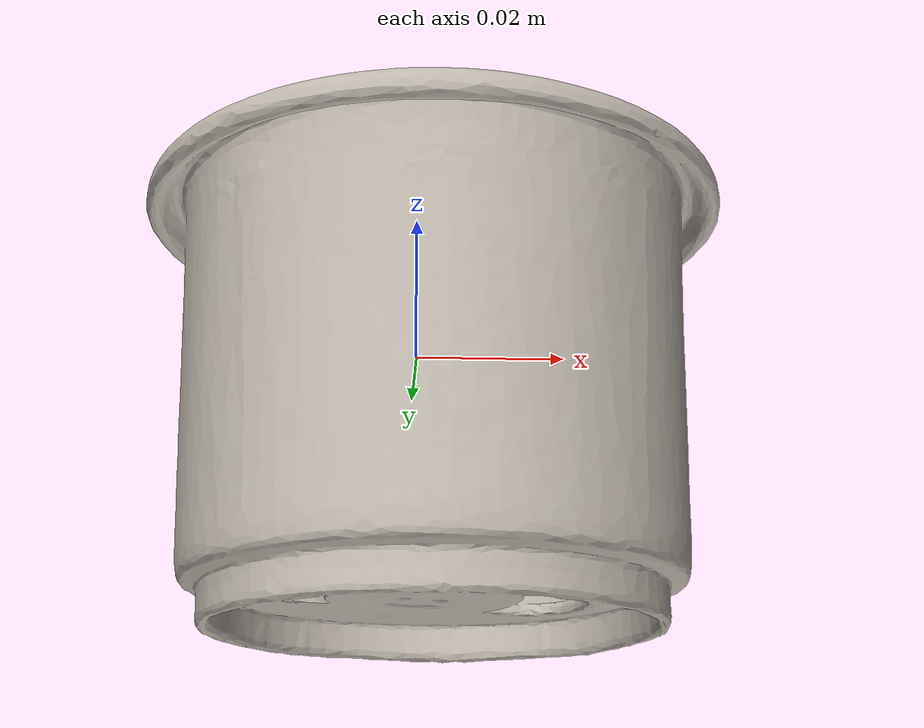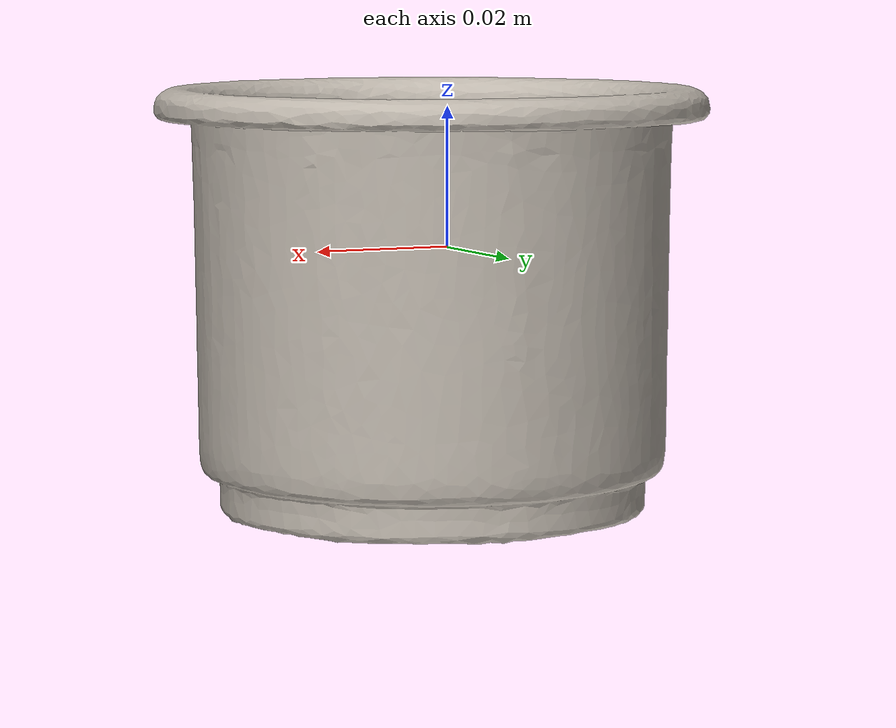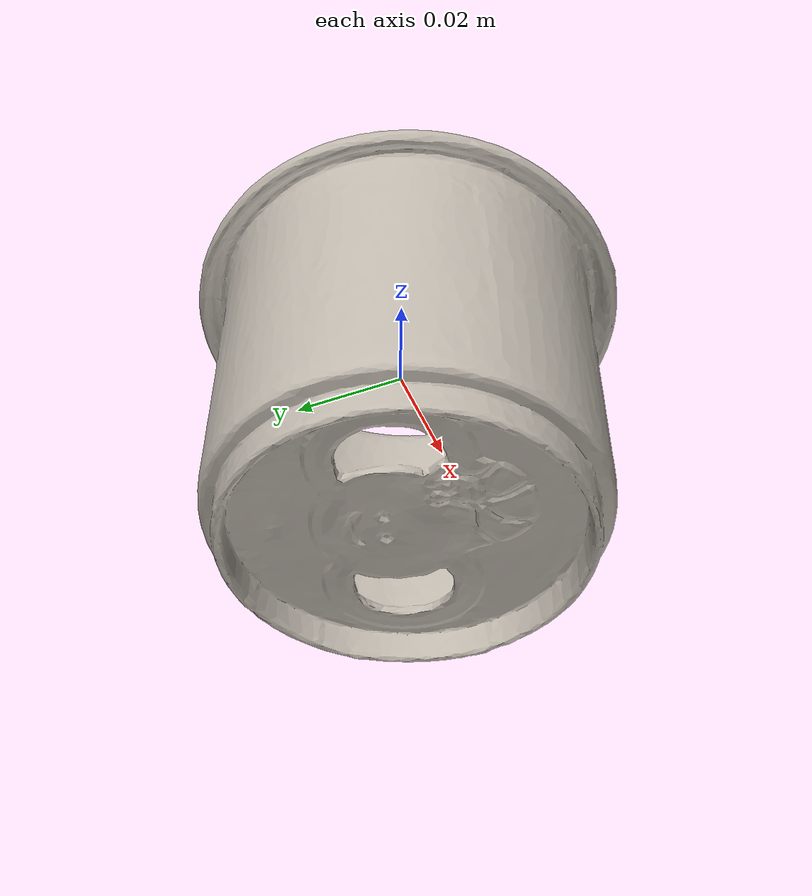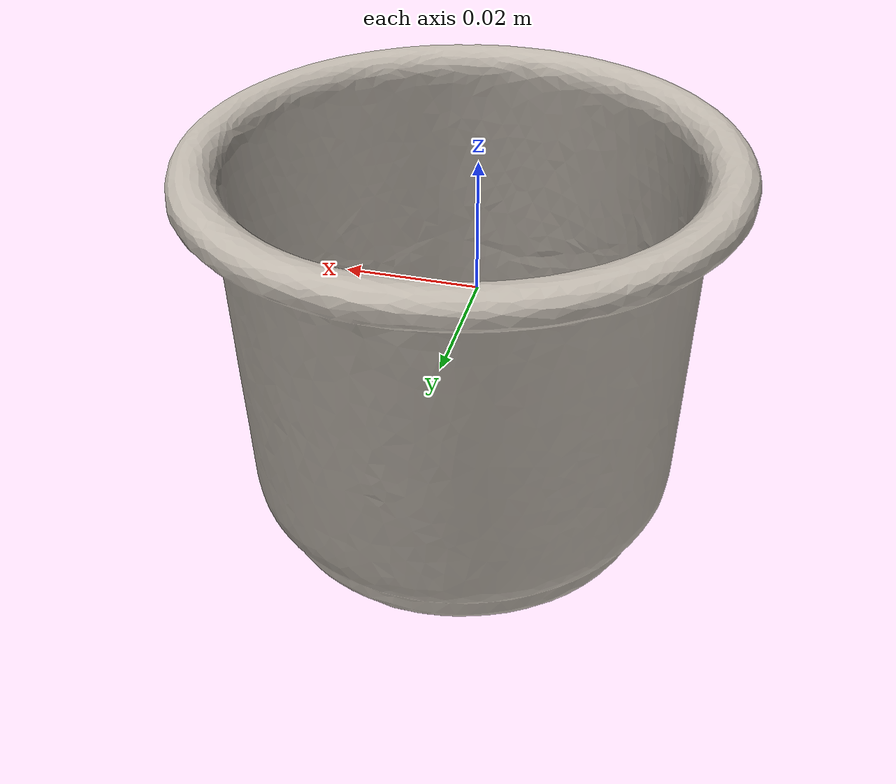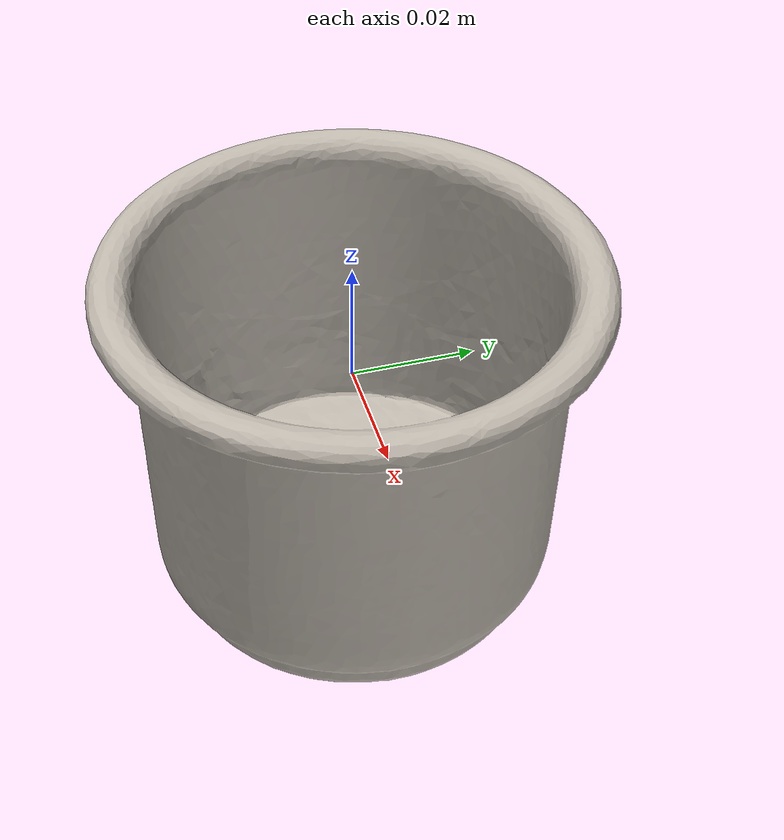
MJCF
<mujoco model="bread">
  <asset>
    <mesh file="nontextured.stl" name="obj_mesh" scale="0.8 0.8 0.8"/>
    <texture file="../../../../../textures/bread.png" type="2d" name="tex-bread" />
    <material name="bread" reflectance="0.7" texrepeat="15 15" texture="tex-bread" texuniform="true"/>
  </asset>
  <worldbody>
    <body>
      <body name="collision">
        <geom pos="0.011262999999999999 -0.0020680000000000004 -0.037072" mesh="obj_mesh" type="mesh" solimp="0.998 0.998 0.001" solref="0.001 1" density="50" friction="0.95 0.3 0.1"  material="bread" group="1" condim="4"/>
      </body>
      <body name="visual">
        <geom pos="0.011262999999999999 -0.0020680000000000004 -0.037072" mesh="obj_mesh" type="mesh" material="bread"  conaffinity="0" contype="0"  group="0" mass="0.0001"/>
        <geom pos="0.011262999999999999 -0.0020680000000000004 -0.037072" mesh="obj_mesh" type="mesh" material="bread"  conaffinity="0" contype="0"  group="1" mass="0.0001"/>
      </body>
      <site rgba="0 0 0 0" size="0.005" pos="0 0 -0.037777" name="bottom_site"/>
      <site rgba="0 0 0 0" size="0.005" pos="0 0 0.037777" name="top_site"/>
      <site rgba="0 0 0 0" size="0.005" pos="0.049084 0.048986 0.037777" name="horizontal_radius_site"/>
    </body>
  </worldbody>
</mujoco>
